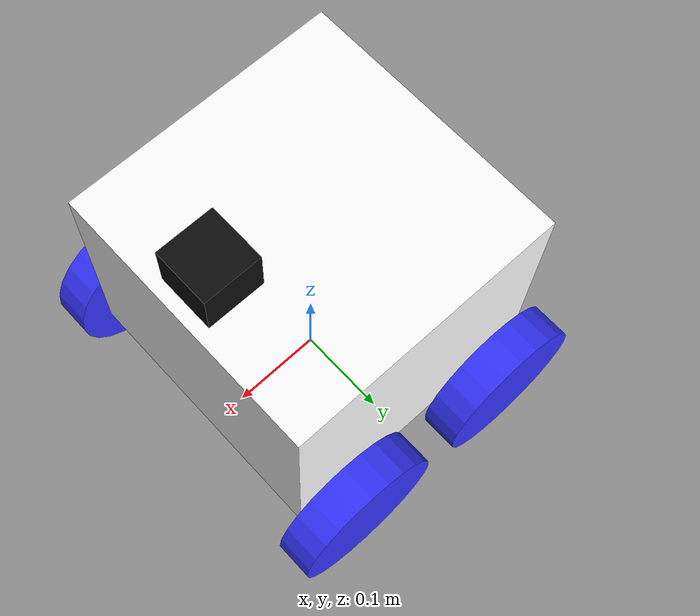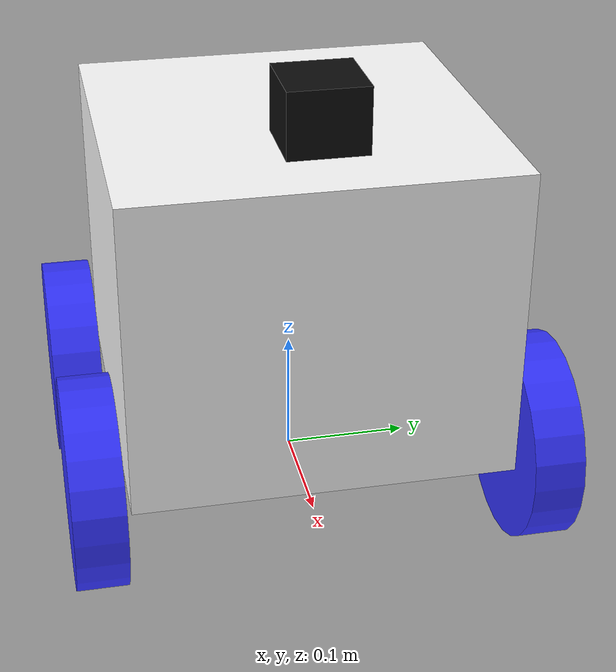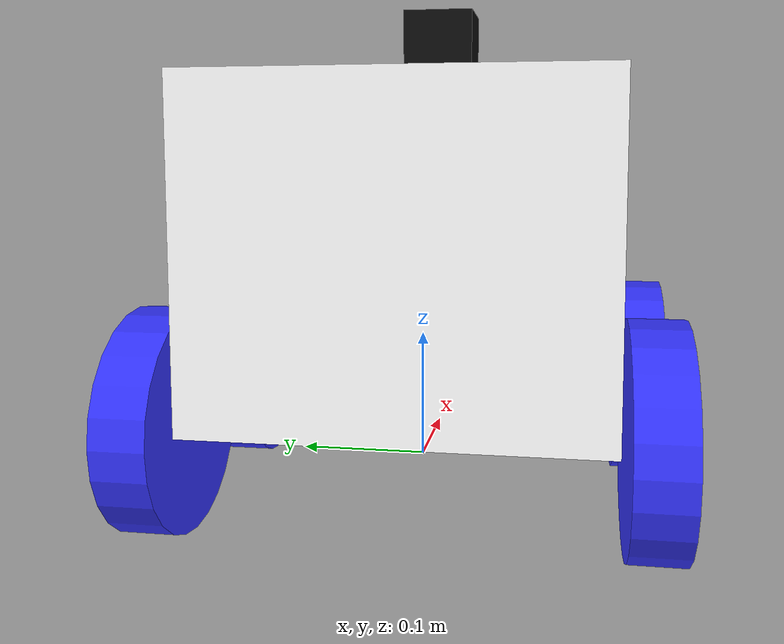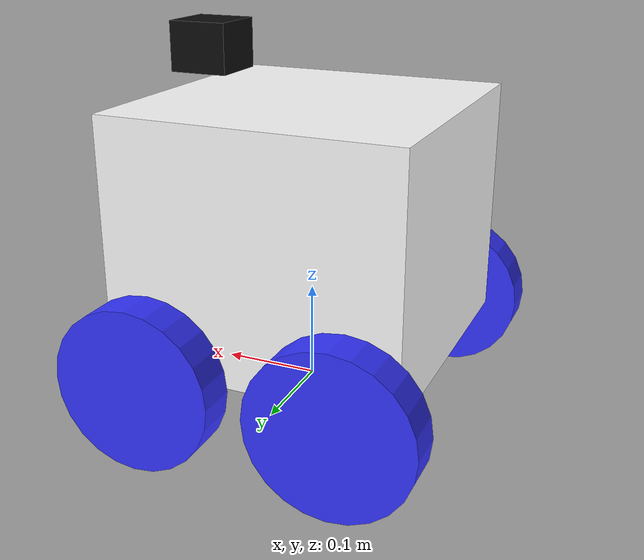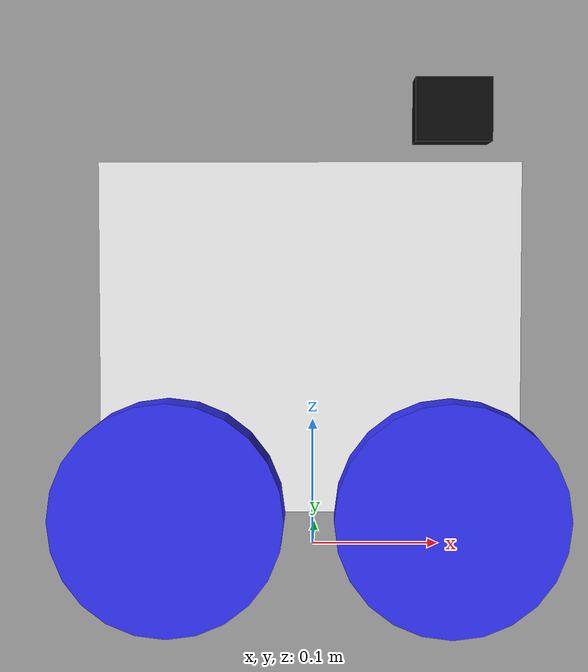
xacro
<?xml version="1.0"?>
<robot name="robot" xmlns:xacro="http://www.ros.org/wiki/xacro">

  <xacro:include filename="$(find real_bot)/description/robot_core.xacro"/>
  <xacro:include filename="$(find real_bot)/description/lidar.xacro"/>
  <xacro:include filename="$(find real_bot)/description/imu.xacro"/>

  <xacro:robot_core/>
  <xacro:real_bot_lidar/>
  <xacro:real_bot_imu/>

</robot>

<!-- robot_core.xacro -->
<robot xmlns:xacro="http://www.ros.org/wiki/xacro">

  <xacro:include filename="$(find real_bot)/description/inertial_macros.xacro"/>

  <xacro:macro name="wheel" params="name parent origin rpy">

    <joint name="${name}_joint" type="continuous">
      <parent link="${parent}"/>
      <child link="${name}"/>
      <origin xyz="${origin}" rpy="${rpy}"/>
      <axis xyz="0 0 1"/>
    </joint>

    <link name="${name}">
      <visual>
        <geometry>
          <cylinder radius="0.08255" length="0.04"/>
        </geometry>
        <material name="blue"/>
      </visual>

      <collision>
        <geometry>
          <cylinder radius="0.08255" length="0.04"/>
        </geometry>
      </collision>

      <xacro:inertial_cylinder mass="0.1" radius="0.08255" length="0.04"/>
    </link>
  </xacro:macro>

  <xacro:macro name="robot_core">

    <material name="white">
      <color rgba="1 1 1 1"/>
    </material>

    <material name="blue">
      <color rgba="0.2 0.2 1 1"/>
    </material>

    <xacro:property name="M_PI" value="3.1415926535897931"/>
    <xacro:property name="left_rear_wheel_pos" value="-0.1 0.175 0"/>
    <xacro:property name="right_rear_wheel_pos" value="-0.1 -0.175 0"/>
    <xacro:property name="left_front_wheel_pos" value="0.1 0.175 0"/>
    <xacro:property name="right_front_wheel_pos" value="0.1 -0.175 0"/>

    <link name="base_link">
      <inertial>
        <mass value="0.001"/>
        <inertia ixx="0.0001" ixy="0" ixz="0" iyy="0.0001" iyz="0" izz="0.0001"/>
      </inertial>
    </link>

    <joint name="chassis_joint" type="fixed">
      <parent link="base_link"/>
      <child link="chassis"/>
      <origin xyz="0 0 0.05"/>
    </joint>

    <link name="chassis">
      <visual>
        <origin xyz="0 0 0.125"/>
        <geometry>
          <box size="0.3 0.3 0.25"/>
        </geometry>
        <material name="white"/>
      </visual>

      <collision>
        <origin xyz="0 0 0.125"/>
        <geometry>
          <box size="0.3 0.3 0.25"/>
        </geometry>
      </collision>

      <inertial>
        <mass value="1.0"/>
        <origin xyz="0 0 0.125"/>
        <inertia ixx="0.015" ixy="0" ixz="0" iyy="0.0375" iyz="0" izz="0.0375"/>
      </inertial>
    </link>

    <xacro:wheel name="left_rear_wheel"   parent="chassis" origin="${left_rear_wheel_pos}"   rpy="${-(M_PI/2)} 0 0"/>
    <xacro:wheel name="right_rear_wheel"  parent="chassis" origin="${right_rear_wheel_pos}"  rpy="${-(M_PI/2)} 0 0"/>
    <xacro:wheel name="left_front_wheel"  parent="chassis" origin="${left_front_wheel_pos}"  rpy="${-(M_PI/2)} 0 0"/>
    <xacro:wheel name="right_front_wheel" parent="chassis" origin="${right_front_wheel_pos}" rpy="${-(M_PI/2)} 0 0"/>

  </xacro:macro>

</robot>

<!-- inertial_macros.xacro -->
<robot xmlns:xacro="http://www.ros.org/wiki/xacro">

  <xacro:macro name="inertial_sphere" params="mass radius">
    <inertial>
      <origin xyz="0 0 0" rpy="0 0 0"/>
      <mass value="${mass}"/>
      <inertia
        ixx="${(2.0/5.0) * mass * radius * radius}"
        ixy="0.0"
        ixz="0.0"
        iyy="${(2.0/5.0) * mass * radius * radius}"
        iyz="0.0"
        izz="${(2.0/5.0) * mass * radius * radius}"/>
    </inertial>
  </xacro:macro>

  <xacro:macro name="inertial_box" params="mass x y z">
    <inertial>
      <origin xyz="0 0 0" rpy="0 0 0"/>
      <mass value="${mass}"/>
      <inertia
        ixx="${(1.0/12.0) * mass * (y * y + z * z)}"
        ixy="0.0"
        ixz="0.0"
        iyy="${(1.0/12.0) * mass * (x * x + z * z)}"
        iyz="0.0"
        izz="${(1.0/12.0) * mass * (x * x + y * y)}"/>
    </inertial>
  </xacro:macro>

  <xacro:macro name="inertial_cylinder" params="mass radius length">
    <inertial>
      <origin xyz="0 0 0" rpy="0 0 0"/>
      <mass value="${mass}"/>
      <inertia
        ixx="${(1.0/12.0) * mass * (3.0 * radius * radius + length * length)}"
        ixy="0.0"
        ixz="0.0"
        iyy="${(1.0/12.0) * mass * (3.0 * radius * radius + length * length)}"
        iyz="0.0"
        izz="${0.5 * mass * radius * radius}"/>
    </inertial>
  </xacro:macro>

</robot>

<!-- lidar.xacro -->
<robot xmlns:xacro="http://www.ros.org/wiki/xacro">

  <xacro:include filename="$(find real_bot)/description/inertial_macros.xacro"/>

  <xacro:macro name="real_bot_lidar">

    <material name="lidar_black">
      <color rgba="0.05 0.05 0.05 1"/>
    </material>

    <joint name="laser_joint" type="fixed">
      <parent link="chassis"/>
      <child link="laser_frame"/>
      <origin xyz="0.11 0 0.27" rpy="0 0 0"/>
    </joint>

    <link name="laser_frame">
      <visual>
        <origin xyz="0 0 0.025"/>
        <geometry>
          <box size="0.06 0.06 0.05"/>
        </geometry>
        <material name="lidar_black"/>
      </visual>

      <collision>
        <origin xyz="0 0 0.025"/>
        <geometry>
          <box size="0.06 0.06 0.05"/>
        </geometry>
      </collision>

      <xacro:inertial_box mass="0.16" x="0.06" y="0.06" z="0.05"/>
    </link>

  </xacro:macro>

</robot>

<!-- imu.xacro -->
<robot xmlns:xacro="http://www.ros.org/wiki/xacro">

  <xacro:include filename="$(find real_bot)/description/inertial_macros.xacro"/>

  <xacro:macro name="real_bot_imu">

    <joint name="imu_joint" type="fixed">
      <parent link="chassis"/>
      <child link="imu_link"/>
      <origin xyz="0 0 0.05" rpy="0 0 0"/>
    </joint>

    <link name="imu_link">
      <visual>
        <geometry>
          <box size="0.02 0.02 0.005"/>
        </geometry>
      </visual>
      <collision>
        <geometry>
          <box size="0.02 0.02 0.005"/>
        </geometry>
      </collision>
      <xacro:inertial_box mass="0.01" x="0.02" y="0.02" z="0.005"/>
    </link>

  </xacro:macro>

</robot>
